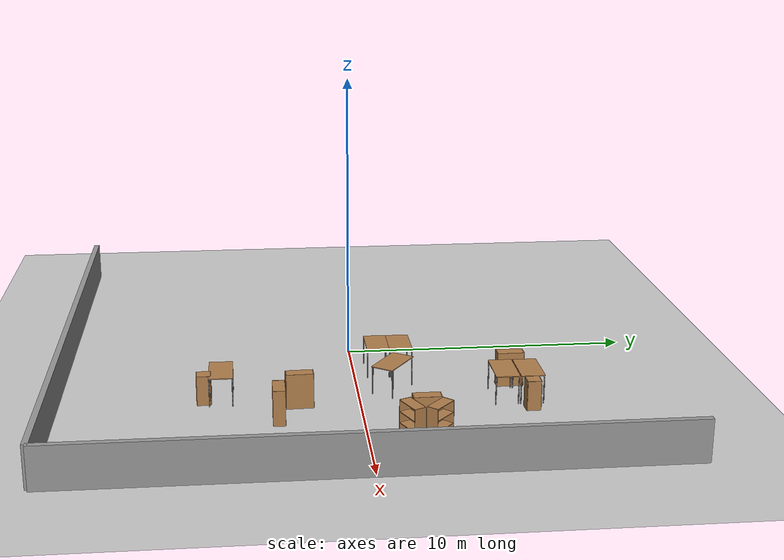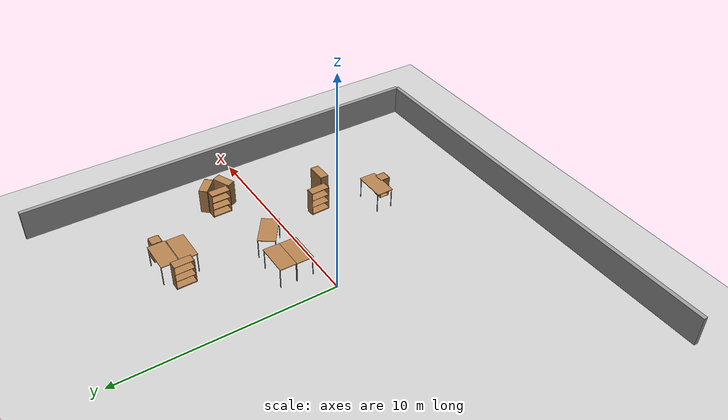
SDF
<sdf version="1.6">
 <world name="default">
  <model name="ground_plane">
   <static>1</static>
   <link name="link">
    <collision name="collision">
     <geometry><plane><normal>0 0 1</normal><size>100 100</size></plane></geometry>
     <surface><friction><ode><mu>100</mu><mu2>50</mu2></ode></friction></surface>
    </collision>
    <visual name="visual">
     <cast_shadows>0</cast_shadows>
     <geometry><plane><normal>0 0 1</normal><size>100 100</size></plane></geometry>
     <material>
      <script><uri>file://media/materials/scripts/gazebo.material</uri><name>Gazebo/Grey</name></script>
     </material>
    </visual>
   </link>
  </model>
  <model name="grey_wall_2">
   <link name="link">
    <inertial>
     <mass>1</mass>
     <inertia><ixx>1</ixx><ixy>0</ixy><ixz>0</ixz><iyy>1</iyy><iyz>0</iyz><izz>1</izz></inertia>
    </inertial>
    <visual name="visual">
     <cast_shadows>0</cast_shadows>
     <geometry><box><size>20 0.2 2.8</size></box></geometry>
     <material>
      <script>
       <uri>model://grey_wall/materials/scripts</uri>
       <uri>model://grey_wall/materials/textures</uri>
       <name>vrc/grey_wall</name>
      </script>
      <ambient>1 1 1 1</ambient>
      <diffuse>1 1 1 1</diffuse>
      <specular>0 0 0 1</specular>
      <emissive>0 0 0 1</emissive>
      <shader type="vertex"><normal_map>__default__</normal_map></shader>
     </material>
    </visual>
    <collision name="collision">
     <geometry><box><size>20 0.2 2.8</size></box></geometry>
     <surface>
      <friction>
       <ode><mu>1</mu><mu2>1</mu2><fdir1>0 0 0</fdir1><slip1>0</slip1><slip2>0</slip2></ode>
       <torsional>
        <coefficient>1</coefficient>
        <patch_radius>0</patch_radius>
        <surface_radius>0</surface_radius>
        <use_patch_radius>1</use_patch_radius>
        <ode><slip>0</slip></ode>
       </torsional>
      </friction>
      <bounce><restitution_coefficient>0</restitution_coefficient><threshold>1e+06</threshold></bounce>
      <contact>
       <collide_without_contact>0</collide_without_contact>
       <collide_without_contact_bitmask>1</collide_without_contact_bitmask>
       <collide_bitmask>1</collide_bitmask>
       <ode>
        <soft_cfm>0</soft_cfm>
        <soft_erp>0.2</soft_erp>
        <kp>1e+13</kp>
        <kd>1</kd>
        <max_vel>0.01</max_vel>
        <min_depth>0</min_depth>
       </ode>
       <bullet>
        <split_impulse>1</split_impulse>
        <split_impulse_penetration_threshold>-0.01</split_impulse_penetration_threshold>
        <soft_cfm>0</soft_cfm>
        <soft_erp>0.2</soft_erp>
        <kp>1e+13</kp>
        <kd>1</kd>
       </bullet>
      </contact>
     </surface>
    </collision>
   </link>
   <static>1</static>
   <pose>0 -10 0 0 -0 0</pose>
  </model>
  <model name="grey_wall_4">
   <link name="link">
    <inertial>
     <mass>1</mass>
     <inertia><ixx>1</ixx><ixy>0</ixy><ixz>0</ixz><iyy>1</iyy><iyz>0</iyz><izz>1</izz></inertia>
    </inertial>
    <visual name="visual">
     <cast_shadows>0</cast_shadows>
     <geometry><box><size>20 0.2 2.8</size></box></geometry>
     <material>
      <script>
       <uri>model://grey_wall/materials/scripts</uri>
       <uri>model://grey_wall/materials/textures</uri>
       <name>vrc/grey_wall</name>
      </script>
      <ambient>1 1 1 1</ambient>
      <diffuse>1 1 1 1</diffuse>
      <specular>0 0 0 1</specular>
      <emissive>0 0 0 1</emissive>
      <shader type="vertex"><normal_map>__default__</normal_map></shader>
     </material>
    </visual>
    <collision name="collision">
     <geometry><box><size>20 0.2 2.8</size></box></geometry>
     <surface>
      <friction>
       <ode><mu>1</mu><mu2>1</mu2><fdir1>0 0 0</fdir1><slip1>0</slip1><slip2>0</slip2></ode>
       <torsional>
        <coefficient>1</coefficient>
        <patch_radius>0</patch_radius>
        <surface_radius>0</surface_radius>
        <use_patch_radius>1</use_patch_radius>
        <ode><slip>0</slip></ode>
       </torsional>
      </friction>
      <bounce><restitution_coefficient>0</restitution_coefficient><threshold>1e+06</threshold></bounce>
      <contact>
       <collide_without_contact>0</collide_without_contact>
       <collide_without_contact_bitmask>1</collide_without_contact_bitmask>
       <collide_bitmask>1</collide_bitmask>
       <ode>
        <soft_cfm>0</soft_cfm>
        <soft_erp>0.2</soft_erp>
        <kp>1e+13</kp>
        <kd>1</kd>
        <max_vel>0.01</max_vel>
        <min_depth>0</min_depth>
       </ode>
       <bullet>
        <split_impulse>1</split_impulse>
        <split_impulse_penetration_threshold>-0.01</split_impulse_penetration_threshold>
        <soft_cfm>0</soft_cfm>
        <soft_erp>0.2</soft_erp>
        <kp>1e+13</kp>
        <kd>1</kd>
       </bullet>
      </contact>
     </surface>
    </collision>
   </link>
   <static>1</static>
   <pose>10 0 0 0 -0 1.5708</pose>
  </model>
  <model name="cabinet">
   <static>1</static>
   <link name="cabinet_bottom_plate">
    <inertial>
     <pose>0 0 -1 0 -0 0</pose>
     <inertia><ixx>2.05</ixx><ixy>0</ixy><ixz>0</ixz><iyy>2.05</iyy><iyz>0</iyz><izz>2.05</izz></inertia>
     <mass>25</mass>
    </inertial>
    <collision name="cabinet_bottom_plate_geom">
     <pose>0 0 0.01 0 -0 0</pose>
     <geometry><box><size>0.45 0.45 0.02</size></box></geometry>
    </collision>
    <visual name="cabinet_bottom_plate_geom_visual">
     <pose>0 0 0.01 0 -0 0</pose>
     <geometry><box><size>0.45 0.45 0.02</size></box></geometry>
     <material>
      <script><uri>file://media/materials/scripts/gazebo.material</uri><name>Gazebo/Wood</name></script>
     </material>
    </visual>
    <collision name="cabinet_bottom_plate_geom_cabinet_back_plate">
     <pose>0.235 0 0.51 0 -0 0</pose>
     <geometry><box><size>0.02 0.45 1.02</size></box></geometry>
    </collision>
    <visual name="cabinet_bottom_plate_geom_cabinet_back_plate_visual">
     <pose>0.235 0 0.51 0 -0 0</pose>
     <geometry><box><size>0.02 0.45 1.02</size></box></geometry>
     <material>
      <script><uri>file://media/materials/scripts/gazebo.material</uri><name>Gazebo/Wood</name></script>
     </material>
    </visual>
    <collision name="cabinet_bottom_plate_geom_cabinet_left_plate">
     <pose>0 0.235 0.51 0 -0 0</pose>
     <geometry><box><size>0.45 0.02 1.02</size></box></geometry>
    </collision>
    <visual name="cabinet_bottom_plate_geom_cabinet_left_plate_visual">
     <pose>0 0.235 0.51 0 -0 0</pose>
     <geometry><box><size>0.45 0.02 1.02</size></box></geometry>
     <material>
      <script><uri>file://media/materials/scripts/gazebo.material</uri><name>Gazebo/Wood</name></script>
     </material>
    </visual>
    <collision name="cabinet_bottom_plate_geom_cabinet_middle_plate">
     <pose>0 0 0.51 0 -0 0</pose>
     <geometry><box><size>0.45 0.45 0.02</size></box></geometry>
    </collision>
    <visual name="cabinet_bottom_plate_geom_cabinet_middle_plate_visual">
     <pose>0 0 0.51 0 -0 0</pose>
     <geometry><box><size>0.45 0.45 0.02</size></box></geometry>
     <material>
      <script><uri>file://media/materials/scripts/gazebo.material</uri><name>Gazebo/Wood</name></script>
     </material>
    </visual>
    <collision name="cabinet_bottom_plate_geom_cabinet_right_plate">
     <pose>0 -0.235 0.51 0 -0 0</pose>
     <geometry><box><size>0.45 0.02 1.02</size></box></geometry>
    </collision>
    <visual name="cabinet_bottom_plate_geom_cabinet_right_plate_visual">
     <pose>0 -0.235 0.51 0 -0 0</pose>
     <geometry><box><size>0.45 0.02 1.02</size></box></geometry>
     <material>
      <script><uri>file://media/materials/scripts/gazebo.material</uri><name>Gazebo/Wood</name></script>
     </material>
    </visual>
    <collision name="cabinet_bottom_plate_geom_cabinet_top_plate">
     <pose>0 0 1.01 0 -0 0</pose>
     <geometry><box><size>0.45 0.45 0.02</size></box></geometry>
    </collision>
    <visual name="cabinet_bottom_plate_geom_cabinet_top_plate_visual">
     <pose>0 0 1.01 0 -0 0</pose>
     <geometry><box><size>0.45 0.45 0.02</size></box></geometry>
     <material>
      <script><uri>file://media/materials/scripts/gazebo.material</uri><name>Gazebo/Wood</name></script>
     </material>
    </visual>
   </link>
   <pose>4.23229 -5.13046 0 0 -0 0</pose>
  </model>
  <model name="bookshelf">
   <static>1</static>
   <link name="link">
    <inertial><mass>1</mass></inertial>
    <collision name="back">
     <pose>0 0.005 0.6 0 -0 0</pose>
     <geometry><box><size>0.9 0.01 1.2</size></box></geometry>
    </collision>
    <visual name="visual1">
     <pose>0 0.005 0.6 0 -0 0</pose>
     <geometry><box><size>0.9 0.01 1.2</size></box></geometry>
     <material>
      <script><uri>file://media/materials/scripts/gazebo.material</uri><name>Gazebo/Wood</name></script>
     </material>
    </visual>
    <collision name="left_side">
     <pose>0.45 -0.195 0.6 0 -0 0</pose>
     <geometry><box><size>0.02 0.4 1.2</size></box></geometry>
    </collision>
    <visual name="visual2">
     <pose>0.45 -0.195 0.6 0 -0 0</pose>
     <geometry><box><size>0.02 0.4 1.2</size></box></geometry>
     <material>
      <script><uri>file://media/materials/scripts/gazebo.material</uri><name>Gazebo/Wood</name></script>
     </material>
    </visual>
    <collision name="right_side">
     <pose>-0.45 -0.195 0.6 0 -0 0</pose>
     <geometry><box><size>0.02 0.4 1.2</size></box></geometry>
    </collision>
    <visual name="visual3">
     <pose>-0.45 -0.195 0.6 0 -0 0</pose>
     <geometry><box><size>0.02 0.4 1.2</size></box></geometry>
     <material>
      <script><uri>file://media/materials/scripts/gazebo.material</uri><name>Gazebo/Wood</name></script>
     </material>
    </visual>
    <collision name="bottom">
     <pose>0 -0.195 0.03 0 -0 0</pose>
     <geometry><box><size>0.88 0.4 0.06</size></box></geometry>
    </collision>
    <visual name="visual4">
     <pose>0 -0.195 0.03 0 -0 0</pose>
     <geometry><box><size>0.88 0.4 0.06</size></box></geometry>
     <material>
      <script><uri>file://media/materials/scripts/gazebo.material</uri><name>Gazebo/Wood</name></script>
     </material>
    </visual>
    <collision name="top">
     <pose>0 -0.195 1.19 0 -0 0</pose>
     <geometry><box><size>0.88 0.4 0.02</size></box></geometry>
    </collision>
    <visual name="visual5">
     <pose>0 -0.195 1.19 0 -0 0</pose>
     <geometry><box><size>0.88 0.4 0.02</size></box></geometry>
     <material>
      <script><uri>file://media/materials/scripts/gazebo.material</uri><name>Gazebo/Wood</name></script>
     </material>
    </visual>
    <collision name="low_shelf">
     <pose>0 -0.195 0.43 0 -0 0</pose>
     <geometry><box><size>0.88 0.4 0.02</size></box></geometry>
    </collision>
    <visual name="visual6">
     <pose>0 -0.195 0.43 0 -0 0</pose>
     <geometry><box><size>0.88 0.4 0.02</size></box></geometry>
     <material>
      <script><uri>file://media/materials/scripts/gazebo.material</uri><name>Gazebo/Wood</name></script>
     </material>
    </visual>
    <collision name="high_shelf">
     <pose>0 -0.195 0.8 0 -0 0</pose>
     <geometry><box><size>0.88 0.4 0.02</size></box></geometry>
    </collision>
    <visual name="visual7">
     <pose>0 -0.195 0.8 0 -0 0</pose>
     <geometry><box><size>0.88 0.4 0.02</size></box></geometry>
     <material>
      <script><uri>file://media/materials/scripts/gazebo.material</uri><name>Gazebo/Wood</name></script>
     </material>
    </visual>
   </link>
   <pose>5.88793 -2.5165 0 0 -0 0</pose>
  </model>
  <model name="bookshelf_0">
   <static>1</static>
   <link name="link">
    <inertial><mass>1</mass></inertial>
    <collision name="back">
     <pose>0 0.005 0.6 0 -0 0</pose>
     <geometry><box><size>0.9 0.01 1.2</size></box></geometry>
    </collision>
    <visual name="visual1">
     <pose>0 0.005 0.6 0 -0 0</pose>
     <geometry><box><size>0.9 0.01 1.2</size></box></geometry>
     <material>
      <script><uri>file://media/materials/scripts/gazebo.material</uri><name>Gazebo/Wood</name></script>
     </material>
    </visual>
    <collision name="left_side">
     <pose>0.45 -0.195 0.6 0 -0 0</pose>
     <geometry><box><size>0.02 0.4 1.2</size></box></geometry>
    </collision>
    <visual name="visual2">
     <pose>0.45 -0.195 0.6 0 -0 0</pose>
     <geometry><box><size>0.02 0.4 1.2</size></box></geometry>
     <material>
      <script><uri>file://media/materials/scripts/gazebo.material</uri><name>Gazebo/Wood</name></script>
     </material>
    </visual>
    <collision name="right_side">
     <pose>-0.45 -0.195 0.6 0 -0 0</pose>
     <geometry><box><size>0.02 0.4 1.2</size></box></geometry>
    </collision>
    <visual name="visual3">
     <pose>-0.45 -0.195 0.6 0 -0 0</pose>
     <geometry><box><size>0.02 0.4 1.2</size></box></geometry>
     <material>
      <script><uri>file://media/materials/scripts/gazebo.material</uri><name>Gazebo/Wood</name></script>
     </material>
    </visual>
    <collision name="bottom">
     <pose>0 -0.195 0.03 0 -0 0</pose>
     <geometry><box><size>0.88 0.4 0.06</size></box></geometry>
    </collision>
    <visual name="visual4">
     <pose>0 -0.195 0.03 0 -0 0</pose>
     <geometry><box><size>0.88 0.4 0.06</size></box></geometry>
     <material>
      <script><uri>file://media/materials/scripts/gazebo.material</uri><name>Gazebo/Wood</name></script>
     </material>
    </visual>
    <collision name="top">
     <pose>0 -0.195 1.19 0 -0 0</pose>
     <geometry><box><size>0.88 0.4 0.02</size></box></geometry>
    </collision>
    <visual name="visual5">
     <pose>0 -0.195 1.19 0 -0 0</pose>
     <geometry><box><size>0.88 0.4 0.02</size></box></geometry>
     <material>
      <script><uri>file://media/materials/scripts/gazebo.material</uri><name>Gazebo/Wood</name></script>
     </material>
    </visual>
    <collision name="low_shelf">
     <pose>0 -0.195 0.43 0 -0 0</pose>
     <geometry><box><size>0.88 0.4 0.02</size></box></geometry>
    </collision>
    <visual name="visual6">
     <pose>0 -0.195 0.43 0 -0 0</pose>
     <geometry><box><size>0.88 0.4 0.02</size></box></geometry>
     <material>
      <script><uri>file://media/materials/scripts/gazebo.material</uri><name>Gazebo/Wood</name></script>
     </material>
    </visual>
    <collision name="high_shelf">
     <pose>0 -0.195 0.8 0 -0 0</pose>
     <geometry><box><size>0.88 0.4 0.02</size></box></geometry>
    </collision>
    <visual name="visual7">
     <pose>0 -0.195 0.8 0 -0 0</pose>
     <geometry><box><size>0.88 0.4 0.02</size></box></geometry>
     <material>
      <script><uri>file://media/materials/scripts/gazebo.material</uri><name>Gazebo/Wood</name></script>
     </material>
    </visual>
   </link>
   <pose>7.61248 2.05887 0 0 -0 2.40643</pose>
  </model>
  <model name="table">
   <static>1</static>
   <link name="link">
    <collision name="surface">
     <pose>0 0 1 0 -0 0</pose>
     <geometry><box><size>1.5 0.8 0.03</size></box></geometry>
     <surface><friction><ode><mu>0.6</mu><mu2>0.6</mu2></ode></friction></surface>
    </collision>
    <visual name="visual1">
     <pose>0 0 1 0 -0 0</pose>
     <geometry><box><size>1.5 0.8 0.03</size></box></geometry>
     <material>
      <script><uri>file://media/materials/scripts/gazebo.material</uri><name>Gazebo/Wood</name></script>
     </material>
    </visual>
    <collision name="front_left_leg">
     <pose>0.68 0.38 0.5 0 -0 0</pose>
     <geometry><cylinder><radius>0.02</radius><length>1</length></cylinder></geometry>
    </collision>
    <visual name="front_left_leg">
     <pose>0.68 0.38 0.5 0 -0 0</pose>
     <geometry><cylinder><radius>0.02</radius><length>1</length></cylinder></geometry>
     <material>
      <script><uri>file://media/materials/scripts/gazebo.material</uri><name>Gazebo/Grey</name></script>
     </material>
    </visual>
    <collision name="front_right_leg">
     <pose>0.68 -0.38 0.5 0 -0 0</pose>
     <geometry><cylinder><radius>0.02</radius><length>1</length></cylinder></geometry>
    </collision>
    <visual name="front_right_leg">
     <pose>0.68 -0.38 0.5 0 -0 0</pose>
     <geometry><cylinder><radius>0.02</radius><length>1</length></cylinder></geometry>
     <material>
      <script><uri>file://media/materials/scripts/gazebo.material</uri><name>Gazebo/Grey</name></script>
     </material>
    </visual>
    <collision name="back_right_leg">
     <pose>-0.68 -0.38 0.5 0 -0 0</pose>
     <geometry><cylinder><radius>0.02</radius><length>1</length></cylinder></geometry>
    </collision>
    <visual name="back_right_leg">
     <pose>-0.68 -0.38 0.5 0 -0 0</pose>
     <geometry><cylinder><radius>0.02</radius><length>1</length></cylinder></geometry>
     <material>
      <script><uri>file://media/materials/scripts/gazebo.material</uri><name>Gazebo/Grey</name></script>
     </material>
    </visual>
    <collision name="back_left_leg">
     <pose>-0.68 0.38 0.5 0 -0 0</pose>
     <geometry><cylinder><radius>0.02</radius><length>1</length></cylinder></geometry>
    </collision>
    <visual name="back_left_leg">
     <pose>-0.68 0.38 0.5 0 -0 0</pose>
     <geometry><cylinder><radius>0.02</radius><length>1</length></cylinder></geometry>
     <material>
      <script><uri>file://media/materials/scripts/gazebo.material</uri><name>Gazebo/Grey</name></script>
     </material>
    </visual>
   </link>
   <pose>3.67725 1.1887 0 0 0 -0.613987</pose>
  </model>
  <model name="table_2">
   <static>1</static>
   <link name="link">
    <collision name="surface">
     <pose>0 0 1 0 -0 0</pose>
     <geometry><box><size>1.5 0.8 0.03</size></box></geometry>
     <surface><friction><ode><mu>0.6</mu><mu2>0.6</mu2></ode></friction></surface>
    </collision>
    <visual name="visual1">
     <pose>0 0 1 0 -0 0</pose>
     <geometry><box><size>1.5 0.8 0.03</size></box></geometry>
     <material>
      <script><uri>file://media/materials/scripts/gazebo.material</uri><name>Gazebo/Wood</name></script>
     </material>
    </visual>
    <collision name="front_left_leg">
     <pose>0.68 0.38 0.5 0 -0 0</pose>
     <geometry><cylinder><radius>0.02</radius><length>1</length></cylinder></geometry>
    </collision>
    <visual name="front_left_leg">
     <pose>0.68 0.38 0.5 0 -0 0</pose>
     <geometry><cylinder><radius>0.02</radius><length>1</length></cylinder></geometry>
     <material>
      <script><uri>file://media/materials/scripts/gazebo.material</uri><name>Gazebo/Grey</name></script>
     </material>
    </visual>
    <collision name="front_right_leg">
     <pose>0.68 -0.38 0.5 0 -0 0</pose>
     <geometry><cylinder><radius>0.02</radius><length>1</length></cylinder></geometry>
    </collision>
    <visual name="front_right_leg">
     <pose>0.68 -0.38 0.5 0 -0 0</pose>
     <geometry><cylinder><radius>0.02</radius><length>1</length></cylinder></geometry>
     <material>
      <script><uri>file://media/materials/scripts/gazebo.material</uri><name>Gazebo/Grey</name></script>
     </material>
    </visual>
    <collision name="back_right_leg">
     <pose>-0.68 -0.38 0.5 0 -0 0</pose>
     <geometry><cylinder><radius>0.02</radius><length>1</length></cylinder></geometry>
    </collision>
    <visual name="back_right_leg">
     <pose>-0.68 -0.38 0.5 0 -0 0</pose>
     <geometry><cylinder><radius>0.02</radius><length>1</length></cylinder></geometry>
     <material>
      <script><uri>file://media/materials/scripts/gazebo.material</uri><name>Gazebo/Grey</name></script>
     </material>
    </visual>
    <collision name="back_left_leg">
     <pose>-0.68 0.38 0.5 0 -0 0</pose>
     <geometry><cylinder><radius>0.02</radius><length>1</length></cylinder></geometry>
    </collision>
    <visual name="back_left_leg">
     <pose>-0.68 0.38 0.5 0 -0 0</pose>
     <geometry><cylinder><radius>0.02</radius><length>1</length></cylinder></geometry>
     <material>
      <script><uri>file://media/materials/scripts/gazebo.material</uri><name>Gazebo/Grey</name></script>
     </material>
    </visual>
   </link>
   <pose>4.61816 5.644 0 0 -0 0</pose>
  </model>
  <model name="table_3">
   <static>1</static>
   <link name="link">
    <collision name="surface">
     <pose>0 0 1 0 -0 0</pose>
     <geometry><box><size>1.5 0.8 0.03</size></box></geometry>
     <surface><friction><ode><mu>0.6</mu><mu2>0.6</mu2></ode></friction></surface>
    </collision>
    <visual name="visual1">
     <pose>0 0 1 0 -0 0</pose>
     <geometry><box><size>1.5 0.8 0.03</size></box></geometry>
     <material>
      <script><uri>file://media/materials/scripts/gazebo.material</uri><name>Gazebo/Wood</name></script>
     </material>
    </visual>
    <collision name="front_left_leg">
     <pose>0.68 0.38 0.5 0 -0 0</pose>
     <geometry><cylinder><radius>0.02</radius><length>1</length></cylinder></geometry>
    </collision>
    <visual name="front_left_leg">
     <pose>0.68 0.38 0.5 0 -0 0</pose>
     <geometry><cylinder><radius>0.02</radius><length>1</length></cylinder></geometry>
     <material>
      <script><uri>file://media/materials/scripts/gazebo.material</uri><name>Gazebo/Grey</name></script>
     </material>
    </visual>
    <collision name="front_right_leg">
     <pose>0.68 -0.38 0.5 0 -0 0</pose>
     <geometry><cylinder><radius>0.02</radius><length>1</length></cylinder></geometry>
    </collision>
    <visual name="front_right_leg">
     <pose>0.68 -0.38 0.5 0 -0 0</pose>
     <geometry><cylinder><radius>0.02</radius><length>1</length></cylinder></geometry>
     <material>
      <script><uri>file://media/materials/scripts/gazebo.material</uri><name>Gazebo/Grey</name></script>
     </material>
    </visual>
    <collision name="back_right_leg">
     <pose>-0.68 -0.38 0.5 0 -0 0</pose>
     <geometry><cylinder><radius>0.02</radius><length>1</length></cylinder></geometry>
    </collision>
    <visual name="back_right_leg">
     <pose>-0.68 -0.38 0.5 0 -0 0</pose>
     <geometry><cylinder><radius>0.02</radius><length>1</length></cylinder></geometry>
     <material>
      <script><uri>file://media/materials/scripts/gazebo.material</uri><name>Gazebo/Grey</name></script>
     </material>
    </visual>
    <collision name="back_left_leg">
     <pose>-0.68 0.38 0.5 0 -0 0</pose>
     <geometry><cylinder><radius>0.02</radius><length>1</length></cylinder></geometry>
    </collision>
    <visual name="back_left_leg">
     <pose>-0.68 0.38 0.5 0 -0 0</pose>
     <geometry><cylinder><radius>0.02</radius><length>1</length></cylinder></geometry>
     <material>
      <script><uri>file://media/materials/scripts/gazebo.material</uri><name>Gazebo/Grey</name></script>
     </material>
    </visual>
   </link>
   <pose>4.60045 4.80968 0 0 -0 0</pose>
  </model>
  <model name="cabinet_clone">
   <static>1</static>
   <link name="cabinet_bottom_plate">
    <inertial>
     <pose>0 0 -1 0 -0 0</pose>
     <inertia><ixx>2.05</ixx><ixy>0</ixy><ixz>0</ixz><iyy>2.05</iyy><iyz>0</iyz><izz>2.05</izz></inertia>
     <mass>25</mass>
    </inertial>
    <collision name="cabinet_bottom_plate_geom">
     <pose>0 0 0.01 0 -0 0</pose>
     <geometry><box><size>0.45 0.45 0.02</size></box></geometry>
    </collision>
    <visual name="cabinet_bottom_plate_geom_visual">
     <pose>0 0 0.01 0 -0 0</pose>
     <geometry><box><size>0.45 0.45 0.02</size></box></geometry>
     <material>
      <script><uri>file://media/materials/scripts/gazebo.material</uri><name>Gazebo/Wood</name></script>
     </material>
    </visual>
    <collision name="cabinet_bottom_plate_geom_cabinet_back_plate">
     <pose>0.235 0 0.51 0 -0 0</pose>
     <geometry><box><size>0.02 0.45 1.02</size></box></geometry>
    </collision>
    <visual name="cabinet_bottom_plate_geom_cabinet_back_plate_visual">
     <pose>0.235 0 0.51 0 -0 0</pose>
     <geometry><box><size>0.02 0.45 1.02</size></box></geometry>
     <material>
      <script><uri>file://media/materials/scripts/gazebo.material</uri><name>Gazebo/Wood</name></script>
     </material>
    </visual>
    <collision name="cabinet_bottom_plate_geom_cabinet_left_plate">
     <pose>0 0.235 0.51 0 -0 0</pose>
     <geometry><box><size>0.45 0.02 1.02</size></box></geometry>
    </collision>
    <visual name="cabinet_bottom_plate_geom_cabinet_left_plate_visual">
     <pose>0 0.235 0.51 0 -0 0</pose>
     <geometry><box><size>0.45 0.02 1.02</size></box></geometry>
     <material>
      <script><uri>file://media/materials/scripts/gazebo.material</uri><name>Gazebo/Wood</name></script>
     </material>
    </visual>
    <collision name="cabinet_bottom_plate_geom_cabinet_middle_plate">
     <pose>0 0 0.51 0 -0 0</pose>
     <geometry><box><size>0.45 0.45 0.02</size></box></geometry>
    </collision>
    <visual name="cabinet_bottom_plate_geom_cabinet_middle_plate_visual">
     <pose>0 0 0.51 0 -0 0</pose>
     <geometry><box><size>0.45 0.45 0.02</size></box></geometry>
     <material>
      <script><uri>file://media/materials/scripts/gazebo.material</uri><name>Gazebo/Wood</name></script>
     </material>
    </visual>
    <collision name="cabinet_bottom_plate_geom_cabinet_right_plate">
     <pose>0 -0.235 0.51 0 -0 0</pose>
     <geometry><box><size>0.45 0.02 1.02</size></box></geometry>
    </collision>
    <visual name="cabinet_bottom_plate_geom_cabinet_right_plate_visual">
     <pose>0 -0.235 0.51 0 -0 0</pose>
     <geometry><box><size>0.45 0.02 1.02</size></box></geometry>
     <material>
      <script><uri>file://media/materials/scripts/gazebo.material</uri><name>Gazebo/Wood</name></script>
     </material>
    </visual>
    <collision name="cabinet_bottom_plate_geom_cabinet_top_plate">
     <pose>0 0 1.01 0 -0 0</pose>
     <geometry><box><size>0.45 0.45 0.02</size></box></geometry>
    </collision>
    <visual name="cabinet_bottom_plate_geom_cabinet_top_plate_visual">
     <pose>0 0 1.01 0 -0 0</pose>
     <geometry><box><size>0.45 0.45 0.02</size></box></geometry>
     <material>
      <script><uri>file://media/materials/scripts/gazebo.material</uri><name>Gazebo/Wood</name></script>
     </material>
    </visual>
   </link>
   <pose>5.6317 5.57809 0 0 -0 0</pose>
  </model>
  <model name="table_1_clone_clone_3">
   <static>1</static>
   <link name="link">
    <collision name="surface">
     <pose>0 0 1 0 -0 0</pose>
     <geometry><box><size>1.5 0.8 0.03</size></box></geometry>
     <surface><friction><ode><mu>0.6</mu><mu2>0.6</mu2></ode></friction></surface>
    </collision>
    <visual name="visual1">
     <pose>0 0 1 0 -0 0</pose>
     <geometry><box><size>1.5 0.8 0.03</size></box></geometry>
     <material>
      <script><uri>file://media/materials/scripts/gazebo.material</uri><name>Gazebo/Wood</name></script>
     </material>
    </visual>
    <collision name="front_left_leg">
     <pose>0.68 0.38 0.5 0 -0 0</pose>
     <geometry><cylinder><radius>0.02</radius><length>1</length></cylinder></geometry>
    </collision>
    <visual name="front_left_leg">
     <pose>0.68 0.38 0.5 0 -0 0</pose>
     <geometry><cylinder><radius>0.02</radius><length>1</length></cylinder></geometry>
     <material>
      <script><uri>file://media/materials/scripts/gazebo.material</uri><name>Gazebo/Grey</name></script>
     </material>
    </visual>
    <collision name="front_right_leg">
     <pose>0.68 -0.38 0.5 0 -0 0</pose>
     <geometry><cylinder><radius>0.02</radius><length>1</length></cylinder></geometry>
    </collision>
    <visual name="front_right_leg">
     <pose>0.68 -0.38 0.5 0 -0 0</pose>
     <geometry><cylinder><radius>0.02</radius><length>1</length></cylinder></geometry>
     <material>
      <script><uri>file://media/materials/scripts/gazebo.material</uri><name>Gazebo/Grey</name></script>
     </material>
    </visual>
    <collision name="back_right_leg">
     <pose>-0.68 -0.38 0.5 0 -0 0</pose>
     <geometry><cylinder><radius>0.02</radius><length>1</length></cylinder></geometry>
    </collision>
    <visual name="back_right_leg">
     <pose>-0.68 -0.38 0.5 0 -0 0</pose>
     <geometry><cylinder><radius>0.02</radius><length>1</length></cylinder></geometry>
     <material>
      <script><uri>file://media/materials/scripts/gazebo.material</uri><name>Gazebo/Grey</name></script>
     </material>
    </visual>
    <collision name="back_left_leg">
     <pose>-0.68 0.38 0.5 0 -0 0</pose>
     <geometry><cylinder><radius>0.02</radius><length>1</length></cylinder></geometry>
    </collision>
    <visual name="back_left_leg">
     <pose>-0.68 0.38 0.5 0 -0 0</pose>
     <geometry><cylinder><radius>0.02</radius><length>1</length></cylinder></geometry>
     <material>
      <script><uri>file://media/materials/scripts/gazebo.material</uri><name>Gazebo/Grey</name></script>
     </material>
    </visual>
   </link>
   <pose>3.92435 -4.56831 0 0 -0 0</pose>
  </model>
  <model name="table_1_clone_clone_4">
   <static>1</static>
   <link name="link">
    <collision name="surface">
     <pose>0 0 1 0 -0 0</pose>
     <geometry><box><size>1.5 0.8 0.03</size></box></geometry>
     <surface><friction><ode><mu>0.6</mu><mu2>0.6</mu2></ode></friction></surface>
    </collision>
    <visual name="visual1">
     <pose>0 0 1 0 -0 0</pose>
     <geometry><box><size>1.5 0.8 0.03</size></box></geometry>
     <material>
      <script><uri>file://media/materials/scripts/gazebo.material</uri><name>Gazebo/Wood</name></script>
     </material>
    </visual>
    <collision name="front_left_leg">
     <pose>0.68 0.38 0.5 0 -0 0</pose>
     <geometry><cylinder><radius>0.02</radius><length>1</length></cylinder></geometry>
    </collision>
    <visual name="front_left_leg">
     <pose>0.68 0.38 0.5 0 -0 0</pose>
     <geometry><cylinder><radius>0.02</radius><length>1</length></cylinder></geometry>
     <material>
      <script><uri>file://media/materials/scripts/gazebo.material</uri><name>Gazebo/Grey</name></script>
     </material>
    </visual>
    <collision name="front_right_leg">
     <pose>0.68 -0.38 0.5 0 -0 0</pose>
     <geometry><cylinder><radius>0.02</radius><length>1</length></cylinder></geometry>
    </collision>
    <visual name="front_right_leg">
     <pose>0.68 -0.38 0.5 0 -0 0</pose>
     <geometry><cylinder><radius>0.02</radius><length>1</length></cylinder></geometry>
     <material>
      <script><uri>file://media/materials/scripts/gazebo.material</uri><name>Gazebo/Grey</name></script>
     </material>
    </visual>
    <collision name="back_right_leg">
     <pose>-0.68 -0.38 0.5 0 -0 0</pose>
     <geometry><cylinder><radius>0.02</radius><length>1</length></cylinder></geometry>
    </collision>
    <visual name="back_right_leg">
     <pose>-0.68 -0.38 0.5 0 -0 0</pose>
     <geometry><cylinder><radius>0.02</radius><length>1</length></cylinder></geometry>
     <material>
      <script><uri>file://media/materials/scripts/gazebo.material</uri><name>Gazebo/Grey</name></script>
     </material>
    </visual>
    <collision name="back_left_leg">
     <pose>-0.68 0.38 0.5 0 -0 0</pose>
     <geometry><cylinder><radius>0.02</radius><length>1</length></cylinder></geometry>
    </collision>
    <visual name="back_left_leg">
     <pose>-0.68 0.38 0.5 0 -0 0</pose>
     <geometry><cylinder><radius>0.02</radius><length>1</length></cylinder></geometry>
     <material>
      <script><uri>file://media/materials/scripts/gazebo.material</uri><name>Gazebo/Grey</name></script>
     </material>
    </visual>
   </link>
   <pose>1.90422 1.61319 0 0 -0 0</pose>
  </model>
  <model name="table_1_clone_clone_5">
   <static>1</static>
   <link name="link">
    <collision name="surface">
     <pose>0 0 1 0 -0 0</pose>
     <geometry><box><size>1.5 0.8 0.03</size></box></geometry>
     <surface><friction><ode><mu>0.6</mu><mu2>0.6</mu2></ode></friction></surface>
    </collision>
    <visual name="visual1">
     <pose>0 0 1 0 -0 0</pose>
     <geometry><box><size>1.5 0.8 0.03</size></box></geometry>
     <material>
      <script><uri>file://media/materials/scripts/gazebo.material</uri><name>Gazebo/Wood</name></script>
     </material>
    </visual>
    <collision name="front_left_leg">
     <pose>0.68 0.38 0.5 0 -0 0</pose>
     <geometry><cylinder><radius>0.02</radius><length>1</length></cylinder></geometry>
    </collision>
    <visual name="front_left_leg">
     <pose>0.68 0.38 0.5 0 -0 0</pose>
     <geometry><cylinder><radius>0.02</radius><length>1</length></cylinder></geometry>
     <material>
      <script><uri>file://media/materials/scripts/gazebo.material</uri><name>Gazebo/Grey</name></script>
     </material>
    </visual>
    <collision name="front_right_leg">
     <pose>0.68 -0.38 0.5 0 -0 0</pose>
     <geometry><cylinder><radius>0.02</radius><length>1</length></cylinder></geometry>
    </collision>
    <visual name="front_right_leg">
     <pose>0.68 -0.38 0.5 0 -0 0</pose>
     <geometry><cylinder><radius>0.02</radius><length>1</length></cylinder></geometry>
     <material>
      <script><uri>file://media/materials/scripts/gazebo.material</uri><name>Gazebo/Grey</name></script>
     </material>
    </visual>
    <collision name="back_right_leg">
     <pose>-0.68 -0.38 0.5 0 -0 0</pose>
     <geometry><cylinder><radius>0.02</radius><length>1</length></cylinder></geometry>
    </collision>
    <visual name="back_right_leg">
     <pose>-0.68 -0.38 0.5 0 -0 0</pose>
     <geometry><cylinder><radius>0.02</radius><length>1</length></cylinder></geometry>
     <material>
      <script><uri>file://media/materials/scripts/gazebo.material</uri><name>Gazebo/Grey</name></script>
     </material>
    </visual>
    <collision name="back_left_leg">
     <pose>-0.68 0.38 0.5 0 -0 0</pose>
     <geometry><cylinder><radius>0.02</radius><length>1</length></cylinder></geometry>
    </collision>
    <visual name="back_left_leg">
     <pose>-0.68 0.38 0.5 0 -0 0</pose>
     <geometry><cylinder><radius>0.02</radius><length>1</length></cylinder></geometry>
     <material>
      <script><uri>file://media/materials/scripts/gazebo.material</uri><name>Gazebo/Grey</name></script>
     </material>
    </visual>
   </link>
   <pose>1.891 0.835187 0 0 -0 0</pose>
  </model>
  <model name="bookshelf_1">
   <static>1</static>
   <link name="link">
    <inertial><mass>1</mass></inertial>
    <collision name="back">
     <pose>0 0.005 0.6 0 -0 0</pose>
     <geometry><box><size>0.9 0.01 1.2</size></box></geometry>
    </collision>
    <visual name="visual1">
     <pose>0 0.005 0.6 0 -0 0</pose>
     <geometry><box><size>0.9 0.01 1.2</size></box></geometry>
     <material>
      <script><uri>file://media/materials/scripts/gazebo.material</uri><name>Gazebo/Wood</name></script>
     </material>
    </visual>
    <collision name="left_side">
     <pose>0.45 -0.195 0.6 0 -0 0</pose>
     <geometry><box><size>0.02 0.4 1.2</size></box></geometry>
    </collision>
    <visual name="visual2">
     <pose>0.45 -0.195 0.6 0 -0 0</pose>
     <geometry><box><size>0.02 0.4 1.2</size></box></geometry>
     <material>
      <script><uri>file://media/materials/scripts/gazebo.material</uri><name>Gazebo/Wood</name></script>
     </material>
    </visual>
    <collision name="right_side">
     <pose>-0.45 -0.195 0.6 0 -0 0</pose>
     <geometry><box><size>0.02 0.4 1.2</size></box></geometry>
    </collision>
    <visual name="visual3">
     <pose>-0.45 -0.195 0.6 0 -0 0</pose>
     <geometry><box><size>0.02 0.4 1.2</size></box></geometry>
     <material>
      <script><uri>file://media/materials/scripts/gazebo.material</uri><name>Gazebo/Wood</name></script>
     </material>
    </visual>
    <collision name="bottom">
     <pose>0 -0.195 0.03 0 -0 0</pose>
     <geometry><box><size>0.88 0.4 0.06</size></box></geometry>
    </collision>
    <visual name="visual4">
     <pose>0 -0.195 0.03 0 -0 0</pose>
     <geometry><box><size>0.88 0.4 0.06</size></box></geometry>
     <material>
      <script><uri>file://media/materials/scripts/gazebo.material</uri><name>Gazebo/Wood</name></script>
     </material>
    </visual>
    <collision name="top">
     <pose>0 -0.195 1.19 0 -0 0</pose>
     <geometry><box><size>0.88 0.4 0.02</size></box></geometry>
    </collision>
    <visual name="visual5">
     <pose>0 -0.195 1.19 0 -0 0</pose>
     <geometry><box><size>0.88 0.4 0.02</size></box></geometry>
     <material>
      <script><uri>file://media/materials/scripts/gazebo.material</uri><name>Gazebo/Wood</name></script>
     </material>
    </visual>
    <collision name="low_shelf">
     <pose>0 -0.195 0.43 0 -0 0</pose>
     <geometry><box><size>0.88 0.4 0.02</size></box></geometry>
    </collision>
    <visual name="visual6">
     <pose>0 -0.195 0.43 0 -0 0</pose>
     <geometry><box><size>0.88 0.4 0.02</size></box></geometry>
     <material>
      <script><uri>file://media/materials/scripts/gazebo.material</uri><name>Gazebo/Wood</name></script>
     </material>
    </visual>
    <collision name="high_shelf">
     <pose>0 -0.195 0.8 0 -0 0</pose>
     <geometry><box><size>0.88 0.4 0.02</size></box></geometry>
    </collision>
    <visual name="visual7">
     <pose>0 -0.195 0.8 0 -0 0</pose>
     <geometry><box><size>0.88 0.4 0.02</size></box></geometry>
     <material>
      <script><uri>file://media/materials/scripts/gazebo.material</uri><name>Gazebo/Wood</name></script>
     </material>
    </visual>
   </link>
   <pose>3.76226 5.21988 0 0 0 -1.55995</pose>
  </model>
  <model name="bookshelf_2">
   <static>1</static>
   <link name="link">
    <inertial><mass>1</mass></inertial>
    <collision name="back">
     <pose>0 0.005 0.6 0 -0 0</pose>
     <geometry><box><size>0.9 0.01 1.2</size></box></geometry>
    </collision>
    <visual name="visual1">
     <pose>0 0.005 0.6 0 -0 0</pose>
     <geometry><box><size>0.9 0.01 1.2</size></box></geometry>
     <material>
      <script><uri>file://media/materials/scripts/gazebo.material</uri><name>Gazebo/Wood</name></script>
     </material>
    </visual>
    <collision name="left_side">
     <pose>0.45 -0.195 0.6 0 -0 0</pose>
     <geometry><box><size>0.02 0.4 1.2</size></box></geometry>
    </collision>
    <visual name="visual2">
     <pose>0.45 -0.195 0.6 0 -0 0</pose>
     <geometry><box><size>0.02 0.4 1.2</size></box></geometry>
     <material>
      <script><uri>file://media/materials/scripts/gazebo.material</uri><name>Gazebo/Wood</name></script>
     </material>
    </visual>
    <collision name="right_side">
     <pose>-0.45 -0.195 0.6 0 -0 0</pose>
     <geometry><box><size>0.02 0.4 1.2</size></box></geometry>
    </collision>
    <visual name="visual3">
     <pose>-0.45 -0.195 0.6 0 -0 0</pose>
     <geometry><box><size>0.02 0.4 1.2</size></box></geometry>
     <material>
      <script><uri>file://media/materials/scripts/gazebo.material</uri><name>Gazebo/Wood</name></script>
     </material>
    </visual>
    <collision name="bottom">
     <pose>0 -0.195 0.03 0 -0 0</pose>
     <geometry><box><size>0.88 0.4 0.06</size></box></geometry>
    </collision>
    <visual name="visual4">
     <pose>0 -0.195 0.03 0 -0 0</pose>
     <geometry><box><size>0.88 0.4 0.06</size></box></geometry>
     <material>
      <script><uri>file://media/materials/scripts/gazebo.material</uri><name>Gazebo/Wood</name></script>
     </material>
    </visual>
    <collision name="top">
     <pose>0 -0.195 1.19 0 -0 0</pose>
     <geometry><box><size>0.88 0.4 0.02</size></box></geometry>
    </collision>
    <visual name="visual5">
     <pose>0 -0.195 1.19 0 -0 0</pose>
     <geometry><box><size>0.88 0.4 0.02</size></box></geometry>
     <material>
      <script><uri>file://media/materials/scripts/gazebo.material</uri><name>Gazebo/Wood</name></script>
     </material>
    </visual>
    <collision name="low_shelf">
     <pose>0 -0.195 0.43 0 -0 0</pose>
     <geometry><box><size>0.88 0.4 0.02</size></box></geometry>
    </collision>
    <visual name="visual6">
     <pose>0 -0.195 0.43 0 -0 0</pose>
     <geometry><box><size>0.88 0.4 0.02</size></box></geometry>
     <material>
      <script><uri>file://media/materials/scripts/gazebo.material</uri><name>Gazebo/Wood</name></script>
     </material>
    </visual>
    <collision name="high_shelf">
     <pose>0 -0.195 0.8 0 -0 0</pose>
     <geometry><box><size>0.88 0.4 0.02</size></box></geometry>
    </collision>
    <visual name="visual7">
     <pose>0 -0.195 0.8 0 -0 0</pose>
     <geometry><box><size>0.88 0.4 0.02</size></box></geometry>
     <material>
      <script><uri>file://media/materials/scripts/gazebo.material</uri><name>Gazebo/Wood</name></script>
     </material>
    </visual>
   </link>
   <pose>7.23337 1.88223 0 0 0 -1.56023</pose>
  </model>
  <model name="bookshelf_5">
   <static>1</static>
   <link name="link">
    <inertial><mass>1</mass></inertial>
    <collision name="back">
     <pose>0 0.005 0.6 0 -0 0</pose>
     <geometry><box><size>0.9 0.01 1.2</size></box></geometry>
    </collision>
    <visual name="visual1">
     <pose>0 0.005 0.6 0 -0 0</pose>
     <geometry><box><size>0.9 0.01 1.2</size></box></geometry>
     <material>
      <script><uri>file://media/materials/scripts/gazebo.material</uri><name>Gazebo/Wood</name></script>
     </material>
    </visual>
    <collision name="left_side">
     <pose>0.45 -0.195 0.6 0 -0 0</pose>
     <geometry><box><size>0.02 0.4 1.2</size></box></geometry>
    </collision>
    <visual name="visual2">
     <pose>0.45 -0.195 0.6 0 -0 0</pose>
     <geometry><box><size>0.02 0.4 1.2</size></box></geometry>
     <material>
      <script><uri>file://media/materials/scripts/gazebo.material</uri><name>Gazebo/Wood</name></script>
     </material>
    </visual>
    <collision name="right_side">
     <pose>-0.45 -0.195 0.6 0 -0 0</pose>
     <geometry><box><size>0.02 0.4 1.2</size></box></geometry>
    </collision>
    <visual name="visual3">
     <pose>-0.45 -0.195 0.6 0 -0 0</pose>
     <geometry><box><size>0.02 0.4 1.2</size></box></geometry>
     <material>
      <script><uri>file://media/materials/scripts/gazebo.material</uri><name>Gazebo/Wood</name></script>
     </material>
    </visual>
    <collision name="bottom">
     <pose>0 -0.195 0.03 0 -0 0</pose>
     <geometry><box><size>0.88 0.4 0.06</size></box></geometry>
    </collision>
    <visual name="visual4">
     <pose>0 -0.195 0.03 0 -0 0</pose>
     <geometry><box><size>0.88 0.4 0.06</size></box></geometry>
     <material>
      <script><uri>file://media/materials/scripts/gazebo.material</uri><name>Gazebo/Wood</name></script>
     </material>
    </visual>
    <collision name="top">
     <pose>0 -0.195 1.19 0 -0 0</pose>
     <geometry><box><size>0.88 0.4 0.02</size></box></geometry>
    </collision>
    <visual name="visual5">
     <pose>0 -0.195 1.19 0 -0 0</pose>
     <geometry><box><size>0.88 0.4 0.02</size></box></geometry>
     <material>
      <script><uri>file://media/materials/scripts/gazebo.material</uri><name>Gazebo/Wood</name></script>
     </material>
    </visual>
    <collision name="low_shelf">
     <pose>0 -0.195 0.43 0 -0 0</pose>
     <geometry><box><size>0.88 0.4 0.02</size></box></geometry>
    </collision>
    <visual name="visual6">
     <pose>0 -0.195 0.43 0 -0 0</pose>
     <geometry><box><size>0.88 0.4 0.02</size></box></geometry>
     <material>
      <script><uri>file://media/materials/scripts/gazebo.material</uri><name>Gazebo/Wood</name></script>
     </material>
    </visual>
    <collision name="high_shelf">
     <pose>0 -0.195 0.8 0 -0 0</pose>
     <geometry><box><size>0.88 0.4 0.02</size></box></geometry>
    </collision>
    <visual name="visual7">
     <pose>0 -0.195 0.8 0 -0 0</pose>
     <geometry><box><size>0.88 0.4 0.02</size></box></geometry>
     <material>
      <script><uri>file://media/materials/scripts/gazebo.material</uri><name>Gazebo/Wood</name></script>
     </material>
    </visual>
   </link>
   <pose>7.59203 1.52207 0 0 -0 0.417708</pose>
  </model>
  <model name="bookshelf_6">
   <static>1</static>
   <link name="link">
    <inertial><mass>1</mass></inertial>
    <collision name="back">
     <pose>0 0.005 0.6 0 -0 0</pose>
     <geometry><box><size>0.9 0.01 1.2</size></box></geometry>
    </collision>
    <visual name="visual1">
     <pose>0 0.005 0.6 0 -0 0</pose>
     <geometry><box><size>0.9 0.01 1.2</size></box></geometry>
     <material>
      <script><uri>file://media/materials/scripts/gazebo.material</uri><name>Gazebo/Wood</name></script>
     </material>
    </visual>
    <collision name="left_side">
     <pose>0.45 -0.195 0.6 0 -0 0</pose>
     <geometry><box><size>0.02 0.4 1.2</size></box></geometry>
    </collision>
    <visual name="visual2">
     <pose>0.45 -0.195 0.6 0 -0 0</pose>
     <geometry><box><size>0.02 0.4 1.2</size></box></geometry>
     <material>
      <script><uri>file://media/materials/scripts/gazebo.material</uri><name>Gazebo/Wood</name></script>
     </material>
    </visual>
    <collision name="right_side">
     <pose>-0.45 -0.195 0.6 0 -0 0</pose>
     <geometry><box><size>0.02 0.4 1.2</size></box></geometry>
    </collision>
    <visual name="visual3">
     <pose>-0.45 -0.195 0.6 0 -0 0</pose>
     <geometry><box><size>0.02 0.4 1.2</size></box></geometry>
     <material>
      <script><uri>file://media/materials/scripts/gazebo.material</uri><name>Gazebo/Wood</name></script>
     </material>
    </visual>
    <collision name="bottom">
     <pose>0 -0.195 0.03 0 -0 0</pose>
     <geometry><box><size>0.88 0.4 0.06</size></box></geometry>
    </collision>
    <visual name="visual4">
     <pose>0 -0.195 0.03 0 -0 0</pose>
     <geometry><box><size>0.88 0.4 0.06</size></box></geometry>
     <material>
      <script><uri>file://media/materials/scripts/gazebo.material</uri><name>Gazebo/Wood</name></script>
     </material>
    </visual>
    <collision name="top">
     <pose>0 -0.195 1.19 0 -0 0</pose>
     <geometry><box><size>0.88 0.4 0.02</size></box></geometry>
    </collision>
    <visual name="visual5">
     <pose>0 -0.195 1.19 0 -0 0</pose>
     <geometry><box><size>0.88 0.4 0.02</size></box></geometry>
     <material>
      <script><uri>file://media/materials/scripts/gazebo.material</uri><name>Gazebo/Wood</name></script>
     </material>
    </visual>
    <collision name="low_shelf">
     <pose>0 -0.195 0.43 0 -0 0</pose>
     <geometry><box><size>0.88 0.4 0.02</size></box></geometry>
    </collision>
    <visual name="visual6">
     <pose>0 -0.195 0.43 0 -0 0</pose>
     <geometry><box><size>0.88 0.4 0.02</size></box></geometry>
     <material>
      <script><uri>file://media/materials/scripts/gazebo.material</uri><name>Gazebo/Wood</name></script>
     </material>
    </visual>
    <collision name="high_shelf">
     <pose>0 -0.195 0.8 0 -0 0</pose>
     <geometry><box><size>0.88 0.4 0.02</size></box></geometry>
    </collision>
    <visual name="visual7">
     <pose>0 -0.195 0.8 0 -0 0</pose>
     <geometry><box><size>0.88 0.4 0.02</size></box></geometry>
     <material>
      <script><uri>file://media/materials/scripts/gazebo.material</uri><name>Gazebo/Wood</name></script>
     </material>
    </visual>
   </link>
   <pose>5.01152 -1.99617 0 0 0 -1.53424</pose>
  </model>
 </world>
</sdf>
